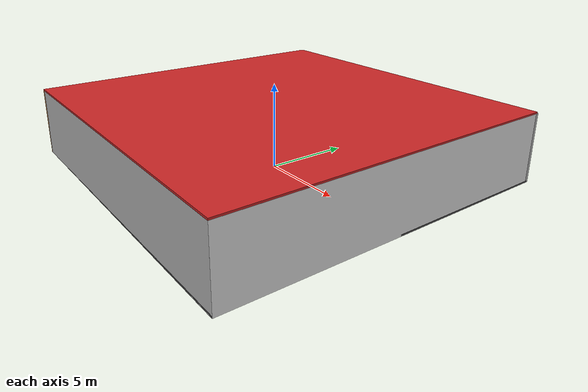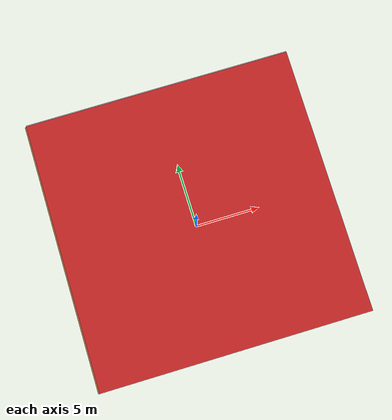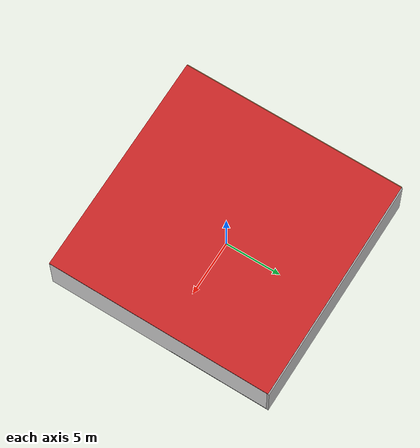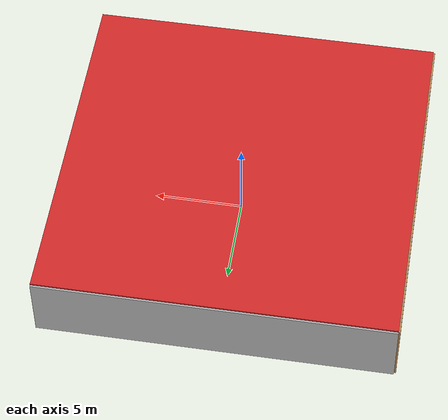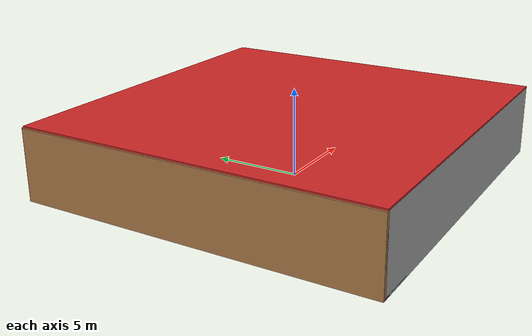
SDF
<sdf version="1.4">
 <world name="default">
  <physics type="ode">
   <max_step_size>0.001</max_step_size>
   <real_time_factor>1</real_time_factor>
   <real_time_update_rate>1000</real_time_update_rate>
   <gravity>0 0 -9.8</gravity>
  </physics>
  <scene><ambient>0.4 0.4 0.4 1</ambient><background>0.7 0.7 0.7 1</background><shadows>1</shadows></scene>
  <model name="Surrounding">
   <static>1</static>
   <link name="Ceiling">
    <collision name="Ceiling_Collision"><geometry><box><size>20 20 0.1</size></box></geometry></collision>
    <visual name="Ceiling_Visual">
     <geometry><box><size>20 20 0.1</size></box></geometry>
     <material>
      <script><uri>file://media/materials/scripts/gazebo.material</uri><name>Gazebo/Red</name></script>
     </material>
    </visual>
    <pose>0 0 4.05 0 0 0</pose>
   </link>
   <link name="Wall_South">
    <collision name="Wall_South_Collision">
     <geometry><box><size>20 0 4</size></box></geometry>
     <pose>0 0 2 0 -0 0</pose>
    </collision>
    <visual name="Wall_South_Visual">
     <pose>0 0 2 0 -0 0</pose>
     <geometry><box><size>20 0 4</size></box></geometry>
     <material>
      <script><uri>file://media/materials/scripts/gazebo.material</uri><name>Gazebo/CloudySky</name></script>
     </material>
    </visual>
    <velocity_decay><linear>0</linear><angular>0</angular></velocity_decay>
    <pose>0 -10 0 0 -0 0</pose>
   </link>
   <link name="Wall_East">
    <collision name="Wall_21_Collision">
     <geometry><box><size>20 0 4</size></box></geometry>
     <pose>0 0 2 0 -0 0</pose>
    </collision>
    <visual name="Wall_21_Visual">
     <pose>0 0 2 0 -0 0</pose>
     <geometry><box><size>20 0 4</size></box></geometry>
     <material>
      <script><uri>file://media/materials/scripts/gazebo.material</uri><name>Gazebo/White</name></script>
     </material>
    </visual>
    <velocity_decay><linear>0</linear><angular>0</angular></velocity_decay>
    <pose>10 0 0 0 -0 1.5708</pose>
   </link>
   <link name="Wall_North">
    <collision name="Wall_22_Collision">
     <geometry><box><size>20 0.2 4</size></box></geometry>
     <pose>0 0 2 0 -0 0</pose>
    </collision>
    <visual name="Wall_22_Visual">
     <pose>0 0 2 0 -0 0</pose>
     <geometry><box><size>20 0.2 4</size></box></geometry>
     <material>
      <script><uri>file://media/materials/scripts/gazebo.material</uri><name>Gazebo/LightOn</name></script>
     </material>
    </visual>
    <velocity_decay><linear>0</linear><angular>0</angular></velocity_decay>
    <pose>0 10 0 0 -0 0</pose>
   </link>
   <link name="Wall_West">
    <collision name="Wall_23_Collision">
     <geometry><box><size>20 0.2 4</size></box></geometry>
     <pose>0 0 2 0 -0 0</pose>
    </collision>
    <visual name="Wall_23_Visual">
     <pose>0 0 2 0 -0 0</pose>
     <geometry><box><size>20 0.2 4</size></box></geometry>
     <material>
      <script><uri>file://media/materials/scripts/gazebo.material</uri><name>Gazebo/WoodFloor</name></script>
     </material>
    </visual>
    <velocity_decay><linear>0</linear><angular>0</angular></velocity_decay>
    <pose>-10 0 0 0 0 -1.5708</pose>
   </link>
   <link name="Ground_link">
    <collision name="collision">
     <pose>0 0 .05 0 -0 0</pose>
     <geometry><box><size>20 20 0.1</size></box></geometry>
    </collision>
    <visual name="visual">
     <pose>0 0 .05 0 -0 0</pose>
     <geometry><box><size>20 20 0.1</size></box></geometry>
     <material>
      <script><uri>file://media/materials/scripts/gazebo.material</uri><name>Gazebo/DarkGrey</name></script>
     </material>
    </visual>
   </link>
   <static>1</static>
  </model>
  <spherical_coordinates>
   <surface_model>EARTH_WGS84</surface_model>
   <latitude_deg>0</latitude_deg>
   <longitude_deg>0</longitude_deg>
   <elevation>0</elevation>
   <heading_deg>0</heading_deg>
  </spherical_coordinates>
  <light name="lightball_0" type="diffuse">
   <diffuse>0.8 0.8 0.8 1</diffuse>
   <specular>0.2 0.2 0.2 1</specular>
   <attenuation>
    <range>100</range>
    <constant>0.7</constant>
    <linear>0.01</linear>
    <quadratic>0.001</quadratic>
   </attenuation>
   <direction>-0.5 0.1 -0.9</direction>
   <pose>-3.94606442088 -9.08734294056 3.07319482004 0 0 0</pose>
  </light>
  <light name="lightball_1" type="diffuse">
   <diffuse>0.8 0.8 0.8 1</diffuse>
   <specular>0.2 0.2 0.2 1</specular>
   <attenuation>
    <range>100</range>
    <constant>0.7</constant>
    <linear>0.01</linear>
    <quadratic>0.001</quadratic>
   </attenuation>
   <direction>-0.5 0.1 -0.9</direction>
   <pose>-8.15958292631 5.74462642084 3.33201564228 0 0 0</pose>
  </light>
  <light name="lightball_2" type="diffuse">
   <diffuse>0.8 0.8 0.8 1</diffuse>
   <specular>0.2 0.2 0.2 1</specular>
   <attenuation>
    <range>100</range>
    <constant>0.7</constant>
    <linear>0.01</linear>
    <quadratic>0.001</quadratic>
   </attenuation>
   <direction>-0.5 0.1 -0.9</direction>
   <pose>3.03321771037 8.10271200373 3.05705198465 0 0 0</pose>
  </light>
  <light name="lightball_3" type="diffuse">
   <diffuse>0.8 0.8 0.8 1</diffuse>
   <specular>0.2 0.2 0.2 1</specular>
   <attenuation>
    <range>100</range>
    <constant>0.7</constant>
    <linear>0.01</linear>
    <quadratic>0.001</quadratic>
   </attenuation>
   <direction>-0.5 0.1 -0.9</direction>
   <pose>8.80926436735 0.191736763414 2.39189883017 0 0 0</pose>
  </light>
  <light name="lightball_4" type="diffuse">
   <diffuse>0.8 0.8 0.8 1</diffuse>
   <specular>0.2 0.2 0.2 1</specular>
   <attenuation>
    <range>100</range>
    <constant>0.7</constant>
    <linear>0.01</linear>
    <quadratic>0.001</quadratic>
   </attenuation>
   <direction>-0.5 0.1 -0.9</direction>
   <pose>0.134444746828 -2.16860125616 3.57269812782 0 0 0</pose>
  </light>
  <light name="lightball_5" type="diffuse">
   <diffuse>0.8 0.8 0.8 1</diffuse>
   <specular>0.2 0.2 0.2 1</specular>
   <attenuation>
    <range>100</range>
    <constant>0.7</constant>
    <linear>0.01</linear>
    <quadratic>0.001</quadratic>
   </attenuation>
   <direction>-0.5 0.1 -0.9</direction>
   <pose>-3.73239664659 -8.10672743916 3.8168092548 0 0 0</pose>
  </light>
  <light name="lightball_6" type="diffuse">
   <diffuse>0.8 0.8 0.8 1</diffuse>
   <specular>0.2 0.2 0.2 1</specular>
   <attenuation>
    <range>100</range>
    <constant>0.7</constant>
    <linear>0.01</linear>
    <quadratic>0.001</quadratic>
   </attenuation>
   <direction>-0.5 0.1 -0.9</direction>
   <pose>-4.36328811441 8.72052519994 1.37672782 0 0 0</pose>
  </light>
  <light name="lightball_7" type="diffuse">
   <diffuse>0.8 0.8 0.8 1</diffuse>
   <specular>0.2 0.2 0.2 1</specular>
   <attenuation>
    <range>100</range>
    <constant>0.7</constant>
    <linear>0.01</linear>
    <quadratic>0.001</quadratic>
   </attenuation>
   <direction>-0.5 0.1 -0.9</direction>
   <pose>-8.51009123324 0.575031171237 2.56069885111 0 0 0</pose>
  </light>
  <light name="lightball_8" type="diffuse">
   <diffuse>0.8 0.8 0.8 1</diffuse>
   <specular>0.2 0.2 0.2 1</specular>
   <attenuation>
    <range>100</range>
    <constant>0.7</constant>
    <linear>0.01</linear>
    <quadratic>0.001</quadratic>
   </attenuation>
   <direction>-0.5 0.1 -0.9</direction>
   <pose>-5.85794146117 -0.84596618793 2.07651226228 0 0 0</pose>
  </light>
  <light name="lightball_9" type="diffuse">
   <diffuse>0.8 0.8 0.8 1</diffuse>
   <specular>0.2 0.2 0.2 1</specular>
   <attenuation>
    <range>100</range>
    <constant>0.7</constant>
    <linear>0.01</linear>
    <quadratic>0.001</quadratic>
   </attenuation>
   <direction>-0.5 0.1 -0.9</direction>
   <pose>6.08724151663 -8.5081231509 3.8990069039 0 0 0</pose>
  </light>
  <light name="lightball_10" type="diffuse">
   <diffuse>0.8 0.8 0.8 1</diffuse>
   <specular>0.2 0.2 0.2 1</specular>
   <attenuation>
    <range>100</range>
    <constant>0.7</constant>
    <linear>0.01</linear>
    <quadratic>0.001</quadratic>
   </attenuation>
   <direction>-0.5 0.1 -0.9</direction>
   <pose>2.48206558162 -5.7794230792 3.58627648297 0 0 0</pose>
  </light>
  <light name="lightball_11" type="diffuse">
   <diffuse>0.8 0.8 0.8 1</diffuse>
   <specular>0.2 0.2 0.2 1</specular>
   <attenuation>
    <range>100</range>
    <constant>0.7</constant>
    <linear>0.01</linear>
    <quadratic>0.001</quadratic>
   </attenuation>
   <direction>-0.5 0.1 -0.9</direction>
   <pose>8.86574529933 9.05190743071 2.05143572452 0 0 0</pose>
  </light>
  <include><uri>model://cabinet</uri><pose>-8.12016446101 -4.09177478437 0 0 0 0.097981288687</pose></include>
  <include>
   <uri>model://construction_cone</uri>
   <pose>-4.99782056414 -0.396409923448 0 0 0 2.80878640362</pose>
  </include>
  <include>
   <uri>model://robocup_3Dsim_goal</uri>
   <pose>-4.1523631907 1.79248677221 0 0 0 1.33034801152</pose>
  </include>
  <include><uri>model://cabinet</uri><pose>1.02870728771 0.578249410284 0 0 0 0.45426003455</pose></include>
  <include><uri>model://cabinet</uri><pose>4.7678275988 4.42203730758 0 0 0 2.58355990736</pose></include>
  <include>
   <uri>model://construction_cone</uri>
   <pose>3.65809047805 8.29208472274 0 0 0 2.40718872852</pose>
  </include>
 </world>
</sdf>

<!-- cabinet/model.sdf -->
<sdf version="1.5">
  <model name="cabinet">
    <static>true</static>
    <link name="cabinet_bottom_plate">
      <inertial>
        <pose>0 0 -1 0 0 0</pose>
        <inertia>
          <ixx>2.050000</ixx>
          <ixy>0</ixy>
          <ixz>0</ixz>
          <iyy>2.050000</iyy>
          <iyz>0</iyz>
          <izz>2.050000</izz>
        </inertia>
        <mass>25.000000</mass>
      </inertial>
      <collision name="cabinet_bottom_plate_geom">
        <pose>0 0 0.010000 0 0 0</pose>
        <geometry>
          <box>
            <size>0.450000 0.450000 0.020000</size>
          </box>
        </geometry>
      </collision>
      <visual name="cabinet_bottom_plate_geom_visual">
        <pose>0 0 0.010000 0 0 0</pose>
        <geometry>
          <box>
            <size>0.450000 0.450000 0.020000</size>
          </box>
        </geometry>
        <material>
          <script>
            <uri>model://media/materials/scripts/gazebo.material</uri>
            <name>Gazebo/Wood</name>
          </script>
        </material>
      </visual>
      <collision name="cabinet_bottom_plate_geom_cabinet_back_plate">
        <pose>0.235000 0 0.510000 0 0 0</pose>
        <geometry>
          <box>
            <size>0.020000 0.450000 1.020000</size>
          </box>
        </geometry>
      </collision>
      <visual name="cabinet_bottom_plate_geom_cabinet_back_plate_visual">
        <pose>0.235000 0 0.510000 0 0 0</pose>
        <geometry>
          <box>
            <size>0.020000 0.450000 1.020000</size>
          </box>
        </geometry>
        <material>
          <script>
            <uri>model://media/materials/scripts/gazebo.material</uri>
            <name>Gazebo/Wood</name>
          </script>
        </material>
      </visual>
      <collision name="cabinet_bottom_plate_geom_cabinet_left_plate">
        <pose>0 0.235000 0.510000 0 0 0</pose>
        <geometry>
          <box>
            <size>0.450000 0.020000 1.020000</size>
          </box>
        </geometry>
      </collision>
      <visual name="cabinet_bottom_plate_geom_cabinet_left_plate_visual">
        <pose>0 0.235000 0.510000 0 0 0</pose>
        <geometry>
          <box>
            <size>0.450000 0.020000 1.020000</size>
          </box>
        </geometry>
        <material>
          <script>
            <uri>model://media/materials/scripts/gazebo.material</uri>
            <name>Gazebo/Wood</name>
          </script>
        </material>
      </visual>
      <collision name="cabinet_bottom_plate_geom_cabinet_middle_plate">
        <pose>0 0 0.510000 0 0 0</pose>
        <geometry>
          <box>
            <size>0.450000 0.450000 0.020000</size>
          </box>
        </geometry>
      </collision>
      <visual name="cabinet_bottom_plate_geom_cabinet_middle_plate_visual">
        <pose>0 0 0.510000 0 0 0</pose>
        <geometry>
          <box>
            <size>0.450000 0.450000 0.020000</size>
          </box>
        </geometry>
        <material>
          <script>
            <uri>model://media/materials/scripts/gazebo.material</uri>
            <name>Gazebo/Wood</name>
          </script>
        </material>
      </visual>
      <collision name="cabinet_bottom_plate_geom_cabinet_right_plate">
        <pose>0 -0.235000 0.510000 0 0 0</pose>
        <geometry>
          <box>
            <size>0.450000 0.020000 1.020000</size>
          </box>
        </geometry>
      </collision>
      <visual name="cabinet_bottom_plate_geom_cabinet_right_plate_visual">
        <pose>0 -0.235000 0.510000 0 0 0</pose>
        <geometry>
          <box>
            <size>0.450000 0.020000 1.020000</size>
          </box>
        </geometry>
        <material>
          <script>
            <uri>model://media/materials/scripts/gazebo.material</uri>
            <name>Gazebo/Wood</name>
          </script>
        </material>
      </visual>
      <collision name="cabinet_bottom_plate_geom_cabinet_top_plate">
        <pose>0 0 1.010000 0 0 0</pose>
        <geometry>
          <box>
            <size>0.450000 0.450000 0.020000</size>
          </box>
        </geometry>
      </collision>
      <visual name="cabinet_bottom_plate_geom_cabinet_top_plate_visual">
        <pose>0 0 1.010000 0 0 0</pose>
        <geometry>
          <box>
            <size>0.450000 0.450000 0.020000</size>
          </box>
        </geometry>
        <material>
          <script>
            <uri>model://media/materials/scripts/gazebo.material</uri>
            <name>Gazebo/Wood</name>
          </script>
        </material>
      </visual>
    </link>
  </model>
</sdf>

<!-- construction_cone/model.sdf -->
<sdf version="1.5">
  <model name="Construction Cone">
    <link name="link">
      <collision name="collision">
        <geometry>
          <mesh>
            <scale>10 10 10</scale>
            <uri>file://isr-testbed/construction_cone/meshes/construction_cone.dae</uri>
          </mesh>
        </geometry>
      </collision>
      <visual name="visual">
        <geometry>
          <mesh>
            <scale>10 10 10</scale>
            <uri>file://isr-testbed/construction_cone/meshes/construction_cone.dae</uri>
          </mesh>
        </geometry>
      </visual>
    </link>
  </model>
</sdf>

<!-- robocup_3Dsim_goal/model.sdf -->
<sdf version="1.5">
  <model name="robocup_3d_goal">
    <static>true</static>
    <link name="left_post">
      <pose>0 1.05 0.45 0 0 0</pose>
      <collision name="collision">
        <geometry>
          <cylinder>
            <radius>0.05</radius>
            <length>0.9</length>
          </cylinder>
        </geometry>
      </collision>
      <visual name="visual">
        <geometry>
          <cylinder>
            <radius>0.05</radius>
            <length>0.9</length>
          </cylinder>
        </geometry>
        <material>
          <script>
            <uri>file://media/materials/scripts/gazebo.material</uri>
            <name>Gazebo/ZincYellow</name>
          </script>
        </material>
      </visual>
    </link>
    <link name="left_support_horiz_lower">
      <pose>0.30 1.05 0.01 0 0 0</pose>
      <collision name="collision">
        <geometry>
          <box>
            <size>0.50 0.02 0.02</size>
          </box>
        </geometry>
      </collision>
      <visual name="visual">
        <geometry>
          <box>
            <size>0.50 0.02 0.02</size>
          </box>
        </geometry>
        <material>
          <script>
            <uri>file://media/materials/scripts/gazebo.material</uri>
            <name>Gazebo/White</name>
          </script>
        </material>
      </visual>
    </link>
    <link name="left_support_horiz_upper">
      <pose>0.30 1.05 0.79 0 0 0</pose>
      <collision name="collision">
        <geometry>
          <box>
            <size>0.50 0.02 0.02</size>
          </box>
        </geometry>
      </collision>
      <visual name="visual">
        <geometry>
          <box>
            <size>0.50 0.02 0.02</size>
          </box>
        </geometry>
        <material>
          <script>
            <uri>file://media/materials/scripts/gazebo.material</uri>
            <name>Gazebo/White</name>
          </script>
        </material>
      </visual>
    </link>
    <link name="left_support_vertical">
      <pose>0.56 1.05 0.4 0 1.5708 0</pose>
      <collision name="collision">
        <geometry>
          <box>
            <size>0.80 0.02 0.02</size>
          </box>
        </geometry>
      </collision>
      <visual name="visual">
        <geometry>
          <box>
            <size>0.80 0.02 0.02</size>
          </box>
        </geometry>
        <material>
          <script>
            <uri>file://media/materials/scripts/gazebo.material</uri>
            <name>Gazebo/White</name>
          </script>
        </material>
      </visual>
    </link>
    <link name="right_support_horiz_lower">
      <pose>0.30 -1.05 0.01 0 0 0</pose>
      <collision name="collision">
        <geometry>
          <box>
            <size>0.50 0.02 0.02</size>
          </box>
        </geometry>
      </collision>
      <visual name="visual">
        <geometry>
          <box>
            <size>0.50 0.02 0.02</size>
          </box>
        </geometry>
        <material>
          <script>
            <uri>file://media/materials/scripts/gazebo.material</uri>
            <name>Gazebo/White</name>
          </script>
        </material>
      </visual>
    </link>
    <link name="right_support_horiz_upper">
      <pose>0.30 -1.05 0.79 0 0 0</pose>
      <collision name="collision">
        <geometry>
          <box>
            <size>0.50 0.02 0.02</size>
          </box>
        </geometry>
      </collision>
      <visual name="visual">
        <geometry>
          <box>
            <size>0.50 0.02 0.02</size>
          </box>
        </geometry>
        <material>
          <script>
            <uri>file://media/materials/scripts/gazebo.material</uri>
            <name>Gazebo/White</name>
          </script>
        </material>
      </visual>
    </link>
    <link name="right_support_vertical">
      <pose>0.56 -1.05 0.4 0 1.5708 0</pose>
      <collision name="collision">
        <geometry>
          <box>
            <size>0.80 0.02 0.02</size>
          </box>
        </geometry>
      </collision>
      <visual name="visual">
        <geometry>
          <box>
            <size>0.80 0.02 0.02</size>
          </box>
        </geometry>
        <material>
          <script>
            <uri>file://media/materials/scripts/gazebo.material</uri>
            <name>Gazebo/White</name>
          </script>
        </material>
      </visual>
    </link>
    <link name="center_support_horiz_lower">
      <pose>0.56 0 0.01 0 1.5708 0</pose>
      <collision name="collision">
        <geometry>
          <box>
            <size>0.02 2.08 0.02</size>
          </box>
        </geometry>
      </collision>
      <visual name="visual">
        <geometry>
          <box>
            <size>0.02 2.08 0.02</size>
          </box>
        </geometry>
        <material>
          <script>
            <uri>file://media/materials/scripts/gazebo.material</uri>
            <name>Gazebo/White</name>
          </script>
        </material>
      </visual>
    </link>
    <link name="center_support_horiz_upper">
      <pose>0.56 0 0.79 0 1.5708 0</pose>
      <collision name="collision">
        <geometry>
          <box>
            <size>0.02 2.08 0.02</size>
          </box>
        </geometry>
      </collision>
      <visual name="visual">
        <geometry>
          <box>
            <size>0.02 2.08 0.02</size>
          </box>
        </geometry>
        <material>
          <script>
            <uri>file://media/materials/scripts/gazebo.material</uri>
            <name>Gazebo/White</name>
          </script>
        </material>
      </visual>
    </link>
    <link name="right_post">
      <pose>0 -1.05 0.45 0 0 0</pose>
      <collision name="collision">
        <geometry>
          <cylinder>
            <radius>0.05</radius>
            <length>0.9</length>
          </cylinder>
        </geometry>
      </collision>
      <visual name="visual">
        <geometry>
          <cylinder>
            <radius>0.05</radius>
            <length>0.9</length>
          </cylinder>
        </geometry>
        <material>
          <script>
            <uri>file://media/materials/scripts/gazebo.material</uri>
            <name>Gazebo/ZincYellow</name>
          </script>
        </material>
      </visual>
    </link>
    <link name="crossbar">
      <pose>0 0 0.85 1.57 1.57 0</pose>
      <collision name="collision">
        <geometry>
          <cylinder>
            <radius>0.05</radius>
            <length>2.0</length>
          </cylinder>
        </geometry>
      </collision>
      <visual name="visual">
        <geometry>
          <cylinder>
            <radius>0.05</radius>
            <length>2.0</length>
          </cylinder>
        </geometry>
        <material>
          <script>
            <uri>file://media/materials/scripts/gazebo.material</uri>
            <name>Gazebo/ZincYellow</name>
          </script>
        </material>
      </visual>
    </link>
    <link name="center_net">
      <pose>0.56 0 0.40 0 0 0</pose>
      <collision name="collision">
        <geometry>
          <box>
            <size>0.01 2.1 0.80</size>
          </box>
        </geometry>
      </collision>
      <visual name="visual">
        <geometry>
          <box>
            <size>0.01 2.1 0.80</size>
          </box>
        </geometry>
        <material>
          <script>
            <uri>model://../model_source/models/robocup09_spl_field/materials/scripts/</uri>
            <uri>model://../model_source/models/robocup09_spl_field/materials/textures/</uri>
            <name>RoboCup/Net</name>
          </script>
        </material>
      </visual>
    </link>
    <link name="left_net">
      <pose>0.30 1.05 0.40 0 0 0</pose>
      <collision name="collision">
        <geometry>
          <box>
            <size>0.50 0.01 0.76</size>
          </box>
        </geometry>
      </collision>
      <visual name="visual">
        <geometry>
          <box>
            <size>0.50 0.01 0.76</size>
          </box>
        </geometry>
        <material>
          <script>
            <uri>model://../model_source/models/robocup09_spl_field/materials/scripts/</uri>
            <uri>model://../model_source/models/robocup09_spl_field/materials/textures/</uri>
            <name>RoboCup/Net</name>
          </script>
        </material>
      </visual>
    </link>
    <link name="right_net">
      <pose>0.30 -1.05 0.40 0 0 0</pose>
      <collision name="collision">
        <geometry>
          <box>
            <size>0.50 0.01 0.76</size>
          </box>
        </geometry>
      </collision>
      <visual name="visual">
        <geometry>
          <box>
            <size>0.50 0.01 0.76</size>
          </box>
        </geometry>
        <material>
          <script>
            <uri>model://../model_source/models/robocup09_spl_field/materials/scripts/</uri>
            <uri>model://../model_source/models/robocup09_spl_field/materials/textures/</uri>
            <name>RoboCup/Net</name>
          </script>
        </material>
      </visual>
    </link>
  </model>
</sdf>
